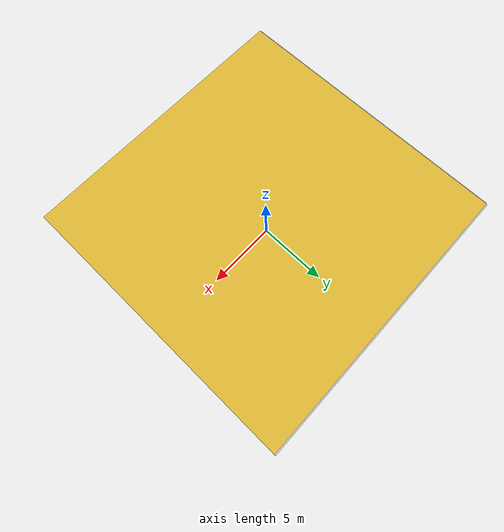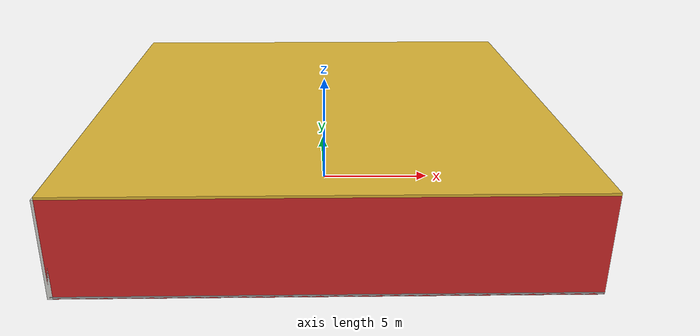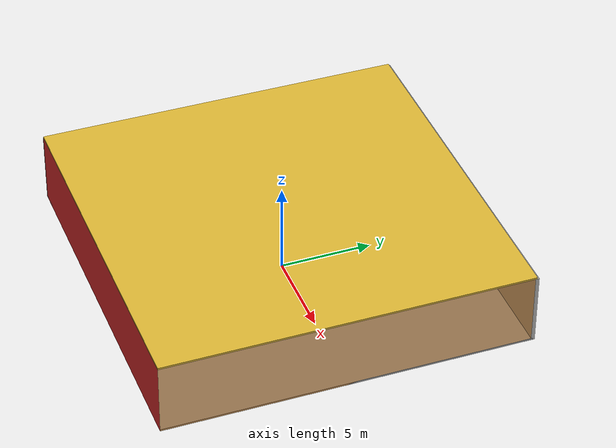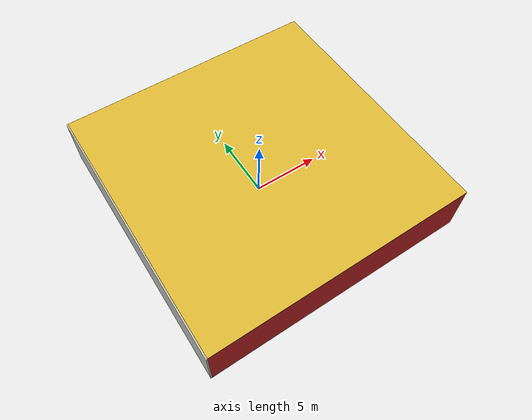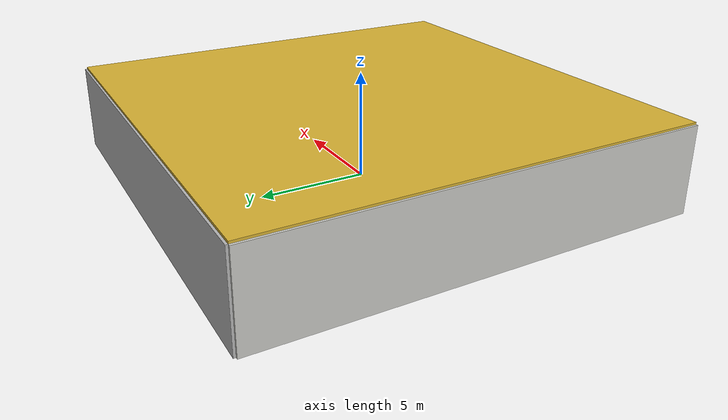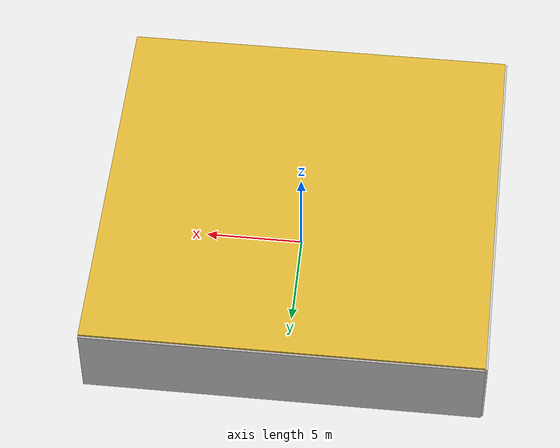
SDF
<sdf version="1.4">
 <world name="default">
  <physics type="ode">
   <max_step_size>0.001</max_step_size>
   <real_time_factor>1</real_time_factor>
   <real_time_update_rate>1000</real_time_update_rate>
   <gravity>0 0 -9.8</gravity>
  </physics>
  <scene><ambient>0.4 0.4 0.4 1</ambient><background>0.7 0.7 0.7 1</background><shadows>1</shadows></scene>
  <model name="Surrounding">
   <static>1</static>
   <link name="Ceiling">
    <collision name="Ceiling_Collision"><geometry><box><size>20 20 0.1</size></box></geometry></collision>
    <visual name="Ceiling_Visual">
     <geometry><box><size>20 20 0.1</size></box></geometry>
     <material>
      <script><uri>file://media/materials/scripts/gazebo.material</uri><name>Gazebo/Gold</name></script>
     </material>
    </visual>
    <pose>0 0 4.05 0 0 0</pose>
   </link>
   <link name="Wall_South">
    <collision name="Wall_South_Collision">
     <geometry><box><size>20 0 4</size></box></geometry>
     <pose>0 0 2 0 -0 0</pose>
    </collision>
    <visual name="Wall_South_Visual">
     <pose>0 0 2 0 -0 0</pose>
     <geometry><box><size>20 0 4</size></box></geometry>
     <material>
      <script><uri>file://media/materials/scripts/gazebo.material</uri><name>Gazebo/RedBright</name></script>
     </material>
    </visual>
    <velocity_decay><linear>0</linear><angular>0</angular></velocity_decay>
    <pose>0 -10 0 0 -0 0</pose>
   </link>
   <link name="Wall_East">
    <collision name="Wall_21_Collision">
     <geometry><box><size>20 0 4</size></box></geometry>
     <pose>0 0 2 0 -0 0</pose>
    </collision>
    <visual name="Wall_21_Visual">
     <pose>0 0 2 0 -0 0</pose>
     <geometry><box><size>20 0 4</size></box></geometry>
     <material>
      <script>
       <uri>file://media/materials/scripts/gazebo.material</uri>
       <name>Gazebo/OrangeTransparent</name>
      </script>
     </material>
    </visual>
    <velocity_decay><linear>0</linear><angular>0</angular></velocity_decay>
    <pose>10 0 0 0 -0 1.5708</pose>
   </link>
   <link name="Wall_North">
    <collision name="Wall_22_Collision">
     <geometry><box><size>20 0.2 4</size></box></geometry>
     <pose>0 0 2 0 -0 0</pose>
    </collision>
    <visual name="Wall_22_Visual">
     <pose>0 0 2 0 -0 0</pose>
     <geometry><box><size>20 0.2 4</size></box></geometry>
     <material>
      <script><uri>file://media/materials/scripts/gazebo.material</uri><name>Gazebo/LightOff</name></script>
     </material>
    </visual>
    <velocity_decay><linear>0</linear><angular>0</angular></velocity_decay>
    <pose>0 10 0 0 -0 0</pose>
   </link>
   <link name="Wall_West">
    <collision name="Wall_23_Collision">
     <geometry><box><size>20 0.2 4</size></box></geometry>
     <pose>0 0 2 0 -0 0</pose>
    </collision>
    <visual name="Wall_23_Visual">
     <pose>0 0 2 0 -0 0</pose>
     <geometry><box><size>20 0.2 4</size></box></geometry>
     <material>
      <script><uri>file://media/materials/scripts/gazebo.material</uri><name>Gazebo/CeilingTiled</name></script>
     </material>
    </visual>
    <velocity_decay><linear>0</linear><angular>0</angular></velocity_decay>
    <pose>-10 0 0 0 0 -1.5708</pose>
   </link>
   <link name="Ground_link">
    <collision name="collision">
     <pose>0 0 .05 0 -0 0</pose>
     <geometry><box><size>20 20 0.1</size></box></geometry>
    </collision>
    <visual name="visual">
     <pose>0 0 .05 0 -0 0</pose>
     <geometry><box><size>20 20 0.1</size></box></geometry>
     <material>
      <script><uri>file://media/materials/scripts/gazebo.material</uri><name>Gazebo/Grey</name></script>
     </material>
    </visual>
   </link>
   <static>1</static>
  </model>
  <spherical_coordinates>
   <surface_model>EARTH_WGS84</surface_model>
   <latitude_deg>0</latitude_deg>
   <longitude_deg>0</longitude_deg>
   <elevation>0</elevation>
   <heading_deg>0</heading_deg>
  </spherical_coordinates>
  <light name="lightball_0" type="diffuse">
   <diffuse>0.8 0.8 0.8 1</diffuse>
   <specular>0.2 0.2 0.2 1</specular>
   <attenuation>
    <range>100</range>
    <constant>0.7</constant>
    <linear>0.01</linear>
    <quadratic>0.001</quadratic>
   </attenuation>
   <direction>-0.5 0.1 -0.9</direction>
   <pose>-4.37770540324 -7.41656168104 3.75236315087 0 0 0</pose>
  </light>
  <light name="lightball_1" type="diffuse">
   <diffuse>0.8 0.8 0.8 1</diffuse>
   <specular>0.2 0.2 0.2 1</specular>
   <attenuation>
    <range>100</range>
    <constant>0.7</constant>
    <linear>0.01</linear>
    <quadratic>0.001</quadratic>
   </attenuation>
   <direction>-0.5 0.1 -0.9</direction>
   <pose>-9.03277772075 -7.70474960545 3.83921056824 0 0 0</pose>
  </light>
  <light name="lightball_2" type="diffuse">
   <diffuse>0.8 0.8 0.8 1</diffuse>
   <specular>0.2 0.2 0.2 1</specular>
   <attenuation>
    <range>100</range>
    <constant>0.7</constant>
    <linear>0.01</linear>
    <quadratic>0.001</quadratic>
   </attenuation>
   <direction>-0.5 0.1 -0.9</direction>
   <pose>2.26539111267 -9.45307943406 0.719169738768 0 0 0</pose>
  </light>
  <include><uri>model://cabinet</uri><pose>-7.93995033137 4.63799700815 0 0 0 2.98580895562</pose></include>
  <include>
   <uri>model://construction_cone</uri>
   <pose>-4.63851348381 -4.75544011162 0 0 0 0.199737693578</pose>
  </include>
  <include><uri>model://cabinet</uri><pose>-4.18004350143 1.06993791534 0 0 0 2.52070208807</pose></include>
  <include>
   <uri>model://textured_shapes</uri>
   <pose>0.956794411229 -1.32998414163 0 0 0 0.605424929676</pose>
  </include>
 </world>
</sdf>

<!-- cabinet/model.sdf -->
<sdf version="1.5">
  <model name="cabinet">
    <static>true</static>
    <link name="cabinet_bottom_plate">
      <inertial>
        <pose>0 0 -1 0 0 0</pose>
        <inertia>
          <ixx>2.050000</ixx>
          <ixy>0</ixy>
          <ixz>0</ixz>
          <iyy>2.050000</iyy>
          <iyz>0</iyz>
          <izz>2.050000</izz>
        </inertia>
        <mass>25.000000</mass>
      </inertial>
      <collision name="cabinet_bottom_plate_geom">
        <pose>0 0 0.010000 0 0 0</pose>
        <geometry>
          <box>
            <size>0.450000 0.450000 0.020000</size>
          </box>
        </geometry>
      </collision>
      <visual name="cabinet_bottom_plate_geom_visual">
        <pose>0 0 0.010000 0 0 0</pose>
        <geometry>
          <box>
            <size>0.450000 0.450000 0.020000</size>
          </box>
        </geometry>
        <material>
          <script>
            <uri>model://media/materials/scripts/gazebo.material</uri>
            <name>Gazebo/Wood</name>
          </script>
        </material>
      </visual>
      <collision name="cabinet_bottom_plate_geom_cabinet_back_plate">
        <pose>0.235000 0 0.510000 0 0 0</pose>
        <geometry>
          <box>
            <size>0.020000 0.450000 1.020000</size>
          </box>
        </geometry>
      </collision>
      <visual name="cabinet_bottom_plate_geom_cabinet_back_plate_visual">
        <pose>0.235000 0 0.510000 0 0 0</pose>
        <geometry>
          <box>
            <size>0.020000 0.450000 1.020000</size>
          </box>
        </geometry>
        <material>
          <script>
            <uri>model://media/materials/scripts/gazebo.material</uri>
            <name>Gazebo/Wood</name>
          </script>
        </material>
      </visual>
      <collision name="cabinet_bottom_plate_geom_cabinet_left_plate">
        <pose>0 0.235000 0.510000 0 0 0</pose>
        <geometry>
          <box>
            <size>0.450000 0.020000 1.020000</size>
          </box>
        </geometry>
      </collision>
      <visual name="cabinet_bottom_plate_geom_cabinet_left_plate_visual">
        <pose>0 0.235000 0.510000 0 0 0</pose>
        <geometry>
          <box>
            <size>0.450000 0.020000 1.020000</size>
          </box>
        </geometry>
        <material>
          <script>
            <uri>model://media/materials/scripts/gazebo.material</uri>
            <name>Gazebo/Wood</name>
          </script>
        </material>
      </visual>
      <collision name="cabinet_bottom_plate_geom_cabinet_middle_plate">
        <pose>0 0 0.510000 0 0 0</pose>
        <geometry>
          <box>
            <size>0.450000 0.450000 0.020000</size>
          </box>
        </geometry>
      </collision>
      <visual name="cabinet_bottom_plate_geom_cabinet_middle_plate_visual">
        <pose>0 0 0.510000 0 0 0</pose>
        <geometry>
          <box>
            <size>0.450000 0.450000 0.020000</size>
          </box>
        </geometry>
        <material>
          <script>
            <uri>model://media/materials/scripts/gazebo.material</uri>
            <name>Gazebo/Wood</name>
          </script>
        </material>
      </visual>
      <collision name="cabinet_bottom_plate_geom_cabinet_right_plate">
        <pose>0 -0.235000 0.510000 0 0 0</pose>
        <geometry>
          <box>
            <size>0.450000 0.020000 1.020000</size>
          </box>
        </geometry>
      </collision>
      <visual name="cabinet_bottom_plate_geom_cabinet_right_plate_visual">
        <pose>0 -0.235000 0.510000 0 0 0</pose>
        <geometry>
          <box>
            <size>0.450000 0.020000 1.020000</size>
          </box>
        </geometry>
        <material>
          <script>
            <uri>model://media/materials/scripts/gazebo.material</uri>
            <name>Gazebo/Wood</name>
          </script>
        </material>
      </visual>
      <collision name="cabinet_bottom_plate_geom_cabinet_top_plate">
        <pose>0 0 1.010000 0 0 0</pose>
        <geometry>
          <box>
            <size>0.450000 0.450000 0.020000</size>
          </box>
        </geometry>
      </collision>
      <visual name="cabinet_bottom_plate_geom_cabinet_top_plate_visual">
        <pose>0 0 1.010000 0 0 0</pose>
        <geometry>
          <box>
            <size>0.450000 0.450000 0.020000</size>
          </box>
        </geometry>
        <material>
          <script>
            <uri>model://media/materials/scripts/gazebo.material</uri>
            <name>Gazebo/Wood</name>
          </script>
        </material>
      </visual>
    </link>
  </model>
</sdf>

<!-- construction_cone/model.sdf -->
<sdf version="1.5">
  <model name="Construction Cone">
    <link name="link">
      <collision name="collision">
        <geometry>
          <mesh>
            <scale>10 10 10</scale>
            <uri>file://isr-testbed/construction_cone/meshes/construction_cone.dae</uri>
          </mesh>
        </geometry>
      </collision>
      <visual name="visual">
        <geometry>
          <mesh>
            <scale>10 10 10</scale>
            <uri>file://isr-testbed/construction_cone/meshes/construction_cone.dae</uri>
          </mesh>
        </geometry>
      </visual>
    </link>
  </model>
</sdf>

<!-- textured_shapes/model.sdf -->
<sdf version="1.6">
  <model name="textured_shapes">
    <pose>0 0 0.5 0 0 0</pose>
    <link name="box">
      <pose>0 -1.5 0 0 0 0</pose>
      <collision name="collision">
        <geometry>
          <box>
            <size>1 1 1</size>
          </box>
        </geometry>
      </collision>
      <visual name="visual">
        <geometry>
          <box>
            <size>1 1 1</size>
          </box>
        </geometry>
        <material>
          <script>
            <uri>model://../model_source/models/textured_shapes/materials/scripts</uri>
            <uri>model://../model_source/models/textured_shapes/materials/textures</uri>
            <name>TexturedShape/Squares</name>
          </script>
        </material>
      </visual>
    </link>
    <link name="sphere">
      <collision name="collision">
        <geometry>
          <sphere>
            <radius>0.5</radius>
          </sphere>
        </geometry>
      </collision>
      <visual name="visual">
        <geometry>
          <sphere>
            <radius>0.5</radius>
          </sphere>
        </geometry>
        <material>
          <script>
            <uri>model://../model_source/models/textured_shapes/materials/scripts</uri>
            <uri>model://../model_source/models/textured_shapes/materials/textures</uri>
            <name>TexturedShape/Squares</name>
          </script>
        </material>
      </visual>
    </link>
    <link name="cylinder">
      <pose>0 1.5 0 0 0 0</pose>
      <collision name="collision">
        <geometry>
          <cylinder>
            <radius>0.5</radius>
            <length>1</length>
          </cylinder>
        </geometry>
      </collision>
      <visual name="visual">
        <geometry>
          <cylinder>
            <radius>0.5</radius>
            <length>1</length>
          </cylinder>
        </geometry>
        <material>
          <script>
            <uri>model://../model_source/models/textured_shapes/materials/scripts</uri>
            <uri>model://../model_source/models/textured_shapes/materials/textures</uri>
            <name>TexturedShape/Squares</name>
          </script>
        </material>
      </visual>
    </link>
  </model>
</sdf>
